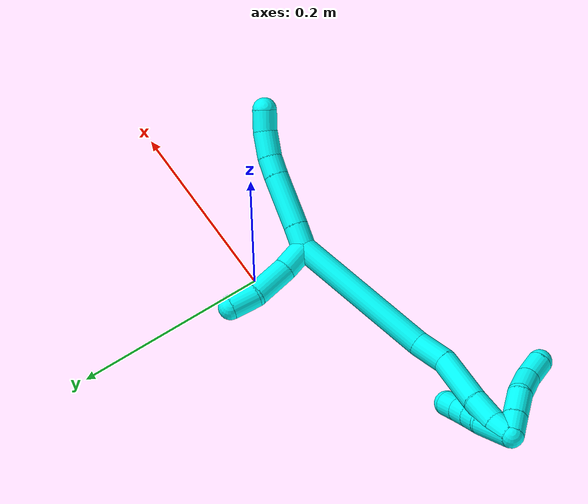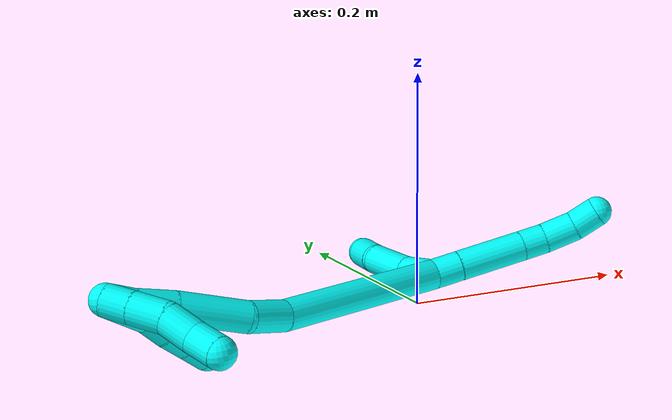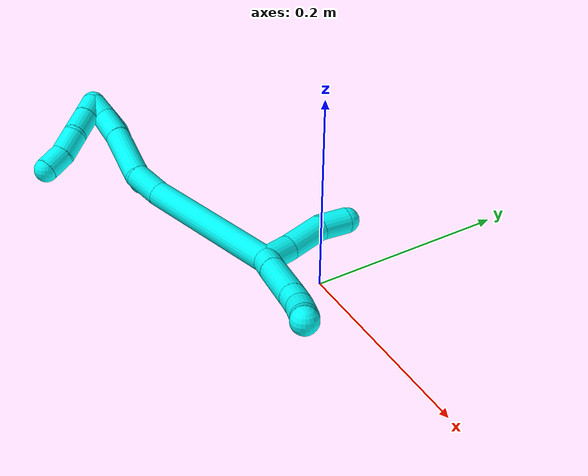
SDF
<sdf version="1.7">
 <world name="default">
  <model name="3">
   <static>0</static>
   <link name="3">
    <collision name="collision-cylinder-e_1_2_8">
     <pose>0.011787 -0.000809 0.001276 0.565229 1.44335 0.500391</pose>
     <geometry><cylinder><radius>0.0125</radius><length>0.023767</length></cylinder></geometry>
     <surface>
      <friction><ode><mu>1.16</mu><mu2>1.16</mu2><slip1>0</slip1><slip2>0</slip2></ode></friction>
      <contact><ode><kp>1e+06</kp><kd>1</kd><max_vel>0</max_vel><min_depth>0.001</min_depth></ode></contact>
     </surface>
    </collision>
    <visual name="visual-cylinder-e_1_2_8">
     <pose>0.011787 -0.000809 0.001276 0.565229 1.44335 0.500391</pose>
     <geometry><cylinder><radius>0.0125</radius><length>0.023767</length></cylinder></geometry>
     <material><ambient>0.003922 1 0.996078 1</ambient></material>
    </visual>
    <collision name="collision-cylinder-e_2_8_9">
     <pose>0.051253 -0.002834 0.005322 0.413616 1.46188 0.371887</pose>
     <geometry><cylinder><radius>0.0125</radius><length>0.055687</length></cylinder></geometry>
     <surface>
      <friction><ode><mu>1.16</mu><mu2>1.16</mu2><slip1>0</slip1><slip2>0</slip2></ode></friction>
      <contact><ode><kp>1e+06</kp><kd>1</kd><max_vel>0</max_vel><min_depth>0.001</min_depth></ode></contact>
     </surface>
    </collision>
    <visual name="visual-cylinder-e_2_8_9">
     <pose>0.051253 -0.002834 0.005322 0.413616 1.46188 0.371887</pose>
     <geometry><cylinder><radius>0.0125</radius><length>0.055687</length></cylinder></geometry>
     <material><ambient>0.003922 1 0.996078 1</ambient></material>
    </visual>
    <collision name="collision-cylinder-e_3_9_10">
     <pose>0.089166 -0.004881 0.009293 0.605473 1.42927 0.529268</pose>
     <geometry><cylinder><radius>0.0125</radius><length>0.020677</length></cylinder></geometry>
     <surface>
      <friction><ode><mu>1.16</mu><mu2>1.16</mu2><slip1>0</slip1><slip2>0</slip2></ode></friction>
      <contact><ode><kp>1e+06</kp><kd>1</kd><max_vel>0</max_vel><min_depth>0.001</min_depth></ode></contact>
     </surface>
    </collision>
    <visual name="visual-cylinder-e_3_9_10">
     <pose>0.089166 -0.004881 0.009293 0.605473 1.42927 0.529268</pose>
     <geometry><cylinder><radius>0.0125</radius><length>0.020677</length></cylinder></geometry>
     <material><ambient>0.003922 1 0.996078 1</ambient></material>
    </visual>
    <collision name="collision-cylinder-e_4_10_11">
     <pose>0.112468 -0.008737 0.01369 0.757798 1.24574 0.557059</pose>
     <geometry><cylinder><radius>0.0125</radius><length>0.027577</length></cylinder></geometry>
     <surface>
      <friction><ode><mu>1.16</mu><mu2>1.16</mu2><slip1>0</slip1><slip2>0</slip2></ode></friction>
      <contact><ode><kp>1e+06</kp><kd>1</kd><max_vel>0</max_vel><min_depth>0.001</min_depth></ode></contact>
     </surface>
    </collision>
    <visual name="visual-cylinder-e_4_10_11">
     <pose>0.112468 -0.008737 0.01369 0.757798 1.24574 0.557059</pose>
     <geometry><cylinder><radius>0.0125</radius><length>0.027577</length></cylinder></geometry>
     <material><ambient>0.003922 1 0.996078 1</ambient></material>
    </visual>
    <collision name="collision-cylinder-e_5_11_6">
     <pose>0.134857 -0.015525 0.021703 0.663201 0.990729 0.36786</pose>
     <geometry><cylinder><radius>0.0125</radius><length>0.022293</length></cylinder></geometry>
     <surface>
      <friction><ode><mu>1.16</mu><mu2>1.16</mu2><slip1>0</slip1><slip2>0</slip2></ode></friction>
      <contact><ode><kp>1e+06</kp><kd>1</kd><max_vel>0</max_vel><min_depth>0.001</min_depth></ode></contact>
     </surface>
    </collision>
    <visual name="visual-cylinder-e_5_11_6">
     <pose>0.134857 -0.015525 0.021703 0.663201 0.990729 0.36786</pose>
     <geometry><cylinder><radius>0.0125</radius><length>0.022293</length></cylinder></geometry>
     <material><ambient>0.003922 1 0.996078 1</ambient></material>
    </visual>
    <collision name="collision-cylinder-e_1_2_12">
     <pose>-0.006761 0.013358 0.000324 -1.54658 -0.468385 0.457568</pose>
     <geometry><cylinder><radius>0.0125</radius><length>0.029951</length></cylinder></geometry>
     <surface>
      <friction><ode><mu>1.16</mu><mu2>1.16</mu2><slip1>0</slip1><slip2>0</slip2></ode></friction>
      <contact><ode><kp>1e+06</kp><kd>1</kd><max_vel>0</max_vel><min_depth>0.001</min_depth></ode></contact>
     </surface>
    </collision>
    <visual name="visual-cylinder-e_1_2_12">
     <pose>-0.006761 0.013358 0.000324 -1.54658 -0.468385 0.457568</pose>
     <geometry><cylinder><radius>0.0125</radius><length>0.029951</length></cylinder></geometry>
     <material><ambient>0.003922 1 0.996078 1</ambient></material>
    </visual>
    <collision name="collision-cylinder-e_2_12_13">
     <pose>-0.021297 0.045549 0.004355 -1.37641 -0.384926 0.3178</pose>
     <geometry><cylinder><radius>0.0125</radius><length>0.041417</length></cylinder></geometry>
     <surface>
      <friction><ode><mu>1.16</mu><mu2>1.16</mu2><slip1>0</slip1><slip2>0</slip2></ode></friction>
      <contact><ode><kp>1e+06</kp><kd>1</kd><max_vel>0</max_vel><min_depth>0.001</min_depth></ode></contact>
     </surface>
    </collision>
    <visual name="visual-cylinder-e_2_12_13">
     <pose>-0.021297 0.045549 0.004355 -1.37641 -0.384926 0.3178</pose>
     <geometry><cylinder><radius>0.0125</radius><length>0.041417</length></cylinder></geometry>
     <material><ambient>0.003922 1 0.996078 1</ambient></material>
    </visual>
    <collision name="collision-cylinder-e_3_13_5">
     <pose>-0.030433 0.078606 0.008925 -1.51023 -0.095179 0.08959</pose>
     <geometry><cylinder><radius>0.0125</radius><length>0.028633</length></cylinder></geometry>
     <surface>
      <friction><ode><mu>1.16</mu><mu2>1.16</mu2><slip1>0</slip1><slip2>0</slip2></ode></friction>
      <contact><ode><kp>1e+06</kp><kd>1</kd><max_vel>0</max_vel><min_depth>0.001</min_depth></ode></contact>
     </surface>
    </collision>
    <visual name="visual-cylinder-e_3_13_5">
     <pose>-0.030433 0.078606 0.008925 -1.51023 -0.095179 0.08959</pose>
     <geometry><cylinder><radius>0.0125</radius><length>0.028633</length></cylinder></geometry>
     <material><ambient>0.003922 1 0.996078 1</ambient></material>
    </visual>
    <collision name="collision-cylinder-e_1_2_14">
     <pose>-0.070289 -0.031164 0.005158 1.40676 -1.14844 -1.00363</pose>
     <geometry><cylinder><radius>0.0125</radius><length>0.154121</length></cylinder></geometry>
     <surface>
      <friction><ode><mu>1.16</mu><mu2>1.16</mu2><slip1>0</slip1><slip2>0</slip2></ode></friction>
      <contact><ode><kp>1e+06</kp><kd>1</kd><max_vel>0</max_vel><min_depth>0.001</min_depth></ode></contact>
     </surface>
    </collision>
    <visual name="visual-cylinder-e_1_2_14">
     <pose>-0.070289 -0.031164 0.005158 1.40676 -1.14844 -1.00363</pose>
     <geometry><cylinder><radius>0.0125</radius><length>0.154121</length></cylinder></geometry>
     <material><ambient>0.003922 1 0.996078 1</ambient></material>
    </visual>
    <collision name="collision-cylinder-e_2_14_15">
     <pose>-0.155297 -0.069646 0.014777 1.02343 -1.04348 -0.624584</pose>
     <geometry><cylinder><radius>0.0125</radius><length>0.034064</length></cylinder></geometry>
     <surface>
      <friction><ode><mu>1.16</mu><mu2>1.16</mu2><slip1>0</slip1><slip2>0</slip2></ode></friction>
      <contact><ode><kp>1e+06</kp><kd>1</kd><max_vel>0</max_vel><min_depth>0.001</min_depth></ode></contact>
     </surface>
    </collision>
    <visual name="visual-cylinder-e_2_14_15">
     <pose>-0.155297 -0.069646 0.014777 1.02343 -1.04348 -0.624584</pose>
     <geometry><cylinder><radius>0.0125</radius><length>0.034064</length></cylinder></geometry>
     <material><ambient>0.003922 1 0.996078 1</ambient></material>
    </visual>
    <collision name="collision-cylinder-e_3_15_16">
     <pose>-0.196471 -0.080073 0.029767 0.287022 -1.17747 -0.192383</pose>
     <geometry><cylinder><radius>0.0125</radius><length>0.057286</length></cylinder></geometry>
     <surface>
      <friction><ode><mu>1.16</mu><mu2>1.16</mu2><slip1>0</slip1><slip2>0</slip2></ode></friction>
      <contact><ode><kp>1e+06</kp><kd>1</kd><max_vel>0</max_vel><min_depth>0.001</min_depth></ode></contact>
     </surface>
    </collision>
    <visual name="visual-cylinder-e_3_15_16">
     <pose>-0.196471 -0.080073 0.029767 0.287022 -1.17747 -0.192383</pose>
     <geometry><cylinder><radius>0.0125</radius><length>0.057286</length></cylinder></geometry>
     <material><ambient>0.003922 1 0.996078 1</ambient></material>
    </visual>
    <collision name="collision-cylinder-e_4_16_17">
     <pose>-0.237655 -0.08629 0.045109 0.573525 -1.19973 -0.398036</pose>
     <geometry><cylinder><radius>0.0125</radius><length>0.031608</length></cylinder></geometry>
     <surface>
      <friction><ode><mu>1.16</mu><mu2>1.16</mu2><slip1>0</slip1><slip2>0</slip2></ode></friction>
      <contact><ode><kp>1e+06</kp><kd>1</kd><max_vel>0</max_vel><min_depth>0.001</min_depth></ode></contact>
     </surface>
    </collision>
    <visual name="visual-cylinder-e_4_16_17">
     <pose>-0.237655 -0.08629 0.045109 0.573525 -1.19973 -0.398036</pose>
     <geometry><cylinder><radius>0.0125</radius><length>0.031608</length></cylinder></geometry>
     <material><ambient>0.003922 1 0.996078 1</ambient></material>
    </visual>
    <collision name="collision-cylinder-e_5_17_1">
     <pose>-0.262028 -0.0932 0.054809 0.66107 -1.00019 -0.370679</pose>
     <geometry><cylinder><radius>0.0125</radius><length>0.022921</length></cylinder></geometry>
     <surface>
      <friction><ode><mu>1.16</mu><mu2>1.16</mu2><slip1>0</slip1><slip2>0</slip2></ode></friction>
      <contact><ode><kp>1e+06</kp><kd>1</kd><max_vel>0</max_vel><min_depth>0.001</min_depth></ode></contact>
     </surface>
    </collision>
    <visual name="visual-cylinder-e_5_17_1">
     <pose>-0.262028 -0.0932 0.054809 0.66107 -1.00019 -0.370679</pose>
     <geometry><cylinder><radius>0.0125</radius><length>0.022921</length></cylinder></geometry>
     <material><ambient>0.003922 1 0.996078 1</ambient></material>
    </visual>
    <collision name="collision-cylinder-e_1_1_18">
     <pose>-0.263417 -0.103137 0.056209 2.08738 0.86348 1.33917</pose>
     <geometry><cylinder><radius>0.0125</radius><length>0.021723</length></cylinder></geometry>
     <surface>
      <friction><ode><mu>1.16</mu><mu2>1.16</mu2><slip1>0</slip1><slip2>0</slip2></ode></friction>
      <contact><ode><kp>1e+06</kp><kd>1</kd><max_vel>0</max_vel><min_depth>0.001</min_depth></ode></contact>
     </surface>
    </collision>
    <visual name="visual-cylinder-e_1_1_18">
     <pose>-0.263417 -0.103137 0.056209 2.08738 0.86348 1.33917</pose>
     <geometry><cylinder><radius>0.0125</radius><length>0.021723</length></cylinder></geometry>
     <material><ambient>0.003922 1 0.996078 1</ambient></material>
    </visual>
    <collision name="collision-cylinder-e_2_18_19">
     <pose>-0.244761 -0.117253 0.048281 2.07875 0.850245 1.31258</pose>
     <geometry><cylinder><radius>0.0125</radius><length>0.027681</length></cylinder></geometry>
     <surface>
      <friction><ode><mu>1.16</mu><mu2>1.16</mu2><slip1>0</slip1><slip2>0</slip2></ode></friction>
      <contact><ode><kp>1e+06</kp><kd>1</kd><max_vel>0</max_vel><min_depth>0.001</min_depth></ode></contact>
     </surface>
    </collision>
    <visual name="visual-cylinder-e_2_18_19">
     <pose>-0.244761 -0.117253 0.048281 2.07875 0.850245 1.31258</pose>
     <geometry><cylinder><radius>0.0125</radius><length>0.027681</length></cylinder></geometry>
     <material><ambient>0.003922 1 0.996078 1</ambient></material>
    </visual>
    <collision name="collision-cylinder-e_3_19_20">
     <pose>-0.227083 -0.13346 0.03681 2.27778 0.591997 1.16899</pose>
     <geometry><cylinder><radius>0.0125</radius><length>0.026083</length></cylinder></geometry>
     <surface>
      <friction><ode><mu>1.16</mu><mu2>1.16</mu2><slip1>0</slip1><slip2>0</slip2></ode></friction>
      <contact><ode><kp>1e+06</kp><kd>1</kd><max_vel>0</max_vel><min_depth>0.001</min_depth></ode></contact>
     </surface>
    </collision>
    <visual name="visual-cylinder-e_3_19_20">
     <pose>-0.227083 -0.13346 0.03681 2.27778 0.591997 1.16899</pose>
     <geometry><cylinder><radius>0.0125</radius><length>0.026083</length></cylinder></geometry>
     <material><ambient>0.003922 1 0.996078 1</ambient></material>
    </visual>
    <collision name="collision-cylinder-e_4_20_4">
     <pose>-0.213814 -0.151379 0.025262 2.0071 0.51077 0.777867</pose>
     <geometry><cylinder><radius>0.0125</radius><length>0.024514</length></cylinder></geometry>
     <surface>
      <friction><ode><mu>1.16</mu><mu2>1.16</mu2><slip1>0</slip1><slip2>0</slip2></ode></friction>
      <contact><ode><kp>1e+06</kp><kd>1</kd><max_vel>0</max_vel><min_depth>0.001</min_depth></ode></contact>
     </surface>
    </collision>
    <visual name="visual-cylinder-e_4_20_4">
     <pose>-0.213814 -0.151379 0.025262 2.0071 0.51077 0.777867</pose>
     <geometry><cylinder><radius>0.0125</radius><length>0.024514</length></cylinder></geometry>
     <material><ambient>0.003922 1 0.996078 1</ambient></material>
    </visual>
    <collision name="collision-cylinder-e_1_1_21">
     <pose>-0.257712 -0.088571 0.048532 -2.4948 0.784429 -1.77965</pose>
     <geometry><cylinder><radius>0.0125</radius><length>0.039525</length></cylinder></geometry>
     <surface>
      <friction><ode><mu>1.16</mu><mu2>1.16</mu2><slip1>0</slip1><slip2>0</slip2></ode></friction>
      <contact><ode><kp>1e+06</kp><kd>1</kd><max_vel>0</max_vel><min_depth>0.001</min_depth></ode></contact>
     </surface>
    </collision>
    <visual name="visual-cylinder-e_1_1_21">
     <pose>-0.257712 -0.088571 0.048532 -2.4948 0.784429 -1.77965</pose>
     <geometry><cylinder><radius>0.0125</radius><length>0.039525</length></cylinder></geometry>
     <material><ambient>0.003922 1 0.996078 1</ambient></material>
    </visual>
    <collision name="collision-cylinder-e_2_21_22">
     <pose>-0.237276 -0.078169 0.029839 -2.88538 0.69388 -2.45711</pose>
     <geometry><cylinder><radius>0.0125</radius><length>0.020253</length></cylinder></geometry>
     <surface>
      <friction><ode><mu>1.16</mu><mu2>1.16</mu2><slip1>0</slip1><slip2>0</slip2></ode></friction>
      <contact><ode><kp>1e+06</kp><kd>1</kd><max_vel>0</max_vel><min_depth>0.001</min_depth></ode></contact>
     </surface>
    </collision>
    <visual name="visual-cylinder-e_2_21_22">
     <pose>-0.237276 -0.078169 0.029839 -2.88538 0.69388 -2.45711</pose>
     <geometry><cylinder><radius>0.0125</radius><length>0.020253</length></cylinder></geometry>
     <material><ambient>0.003922 1 0.996078 1</ambient></material>
    </visual>
    <collision name="collision-cylinder-e_3_22_23">
     <pose>-0.223941 -0.0735 0.015505 -2.76427 0.752998 -2.24179</pose>
     <geometry><cylinder><radius>0.0125</radius><length>0.020059</length></cylinder></geometry>
     <surface>
      <friction><ode><mu>1.16</mu><mu2>1.16</mu2><slip1>0</slip1><slip2>0</slip2></ode></friction>
      <contact><ode><kp>1e+06</kp><kd>1</kd><max_vel>0</max_vel><min_depth>0.001</min_depth></ode></contact>
     </surface>
    </collision>
    <visual name="visual-cylinder-e_3_22_23">
     <pose>-0.223941 -0.0735 0.015505 -2.76427 0.752998 -2.24179</pose>
     <geometry><cylinder><radius>0.0125</radius><length>0.020059</length></cylinder></geometry>
     <material><ambient>0.003922 1 0.996078 1</ambient></material>
    </visual>
    <collision name="collision-cylinder-e_4_23_3">
     <pose>-0.210307 -0.067848 0.001847 -2.7345 0.73703 -2.15985</pose>
     <geometry><cylinder><radius>0.0125</radius><length>0.020164</length></cylinder></geometry>
     <surface>
      <friction><ode><mu>1.16</mu><mu2>1.16</mu2><slip1>0</slip1><slip2>0</slip2></ode></friction>
      <contact><ode><kp>1e+06</kp><kd>1</kd><max_vel>0</max_vel><min_depth>0.001</min_depth></ode></contact>
     </surface>
    </collision>
    <visual name="visual-cylinder-e_4_23_3">
     <pose>-0.210307 -0.067848 0.001847 -2.7345 0.73703 -2.15985</pose>
     <geometry><cylinder><radius>0.0125</radius><length>0.020164</length></cylinder></geometry>
     <material><ambient>0.003922 1 0.996078 1</ambient></material>
    </visual>
    <collision name="collision-sphere-3">
     <pose>-0.203531 -0.064892 -0.005008 0 -0 0</pose>
     <geometry><sphere><radius>0.0125</radius></sphere></geometry>
     <surface>
      <friction><ode><mu>1.16</mu><mu2>1.16</mu2><slip1>0</slip1><slip2>0</slip2></ode></friction>
      <contact><ode><kp>1e+06</kp><kd>1</kd><max_vel>0</max_vel><min_depth>0.001</min_depth></ode></contact>
     </surface>
    </collision>
    <visual name="visual-sphere-3">
     <pose>-0.203531 -0.064892 -0.005008 0 -0 0</pose>
     <geometry><sphere><radius>0.0125</radius></sphere></geometry>
     <material><ambient>0.003922 1 0.996078 1</ambient></material>
    </visual>
    <collision name="collision-sphere-23">
     <pose>-0.217083 -0.070804 0.008702 0 -0 0</pose>
     <geometry><sphere><radius>0.0125</radius></sphere></geometry>
     <surface>
      <friction><ode><mu>1.16</mu><mu2>1.16</mu2><slip1>0</slip1><slip2>0</slip2></ode></friction>
      <contact><ode><kp>1e+06</kp><kd>1</kd><max_vel>0</max_vel><min_depth>0.001</min_depth></ode></contact>
     </surface>
    </collision>
    <visual name="visual-sphere-23">
     <pose>-0.217083 -0.070804 0.008702 0 -0 0</pose>
     <geometry><sphere><radius>0.0125</radius></sphere></geometry>
     <material><ambient>0.003922 1 0.996078 1</ambient></material>
    </visual>
    <collision name="collision-sphere-22">
     <pose>-0.2308 -0.076196 0.022308 0 -0 0</pose>
     <geometry><sphere><radius>0.0125</radius></sphere></geometry>
     <surface>
      <friction><ode><mu>1.16</mu><mu2>1.16</mu2><slip1>0</slip1><slip2>0</slip2></ode></friction>
      <contact><ode><kp>1e+06</kp><kd>1</kd><max_vel>0</max_vel><min_depth>0.001</min_depth></ode></contact>
     </surface>
    </collision>
    <visual name="visual-sphere-22">
     <pose>-0.2308 -0.076196 0.022308 0 -0 0</pose>
     <geometry><sphere><radius>0.0125</radius></sphere></geometry>
     <material><ambient>0.003922 1 0.996078 1</ambient></material>
    </visual>
    <collision name="collision-sphere-21">
     <pose>-0.243752 -0.080142 0.03737 0 -0 0</pose>
     <geometry><sphere><radius>0.0125</radius></sphere></geometry>
     <surface>
      <friction><ode><mu>1.16</mu><mu2>1.16</mu2><slip1>0</slip1><slip2>0</slip2></ode></friction>
      <contact><ode><kp>1e+06</kp><kd>1</kd><max_vel>0</max_vel><min_depth>0.001</min_depth></ode></contact>
     </surface>
    </collision>
    <visual name="visual-sphere-21">
     <pose>-0.243752 -0.080142 0.03737 0 -0 0</pose>
     <geometry><sphere><radius>0.0125</radius></sphere></geometry>
     <material><ambient>0.003922 1 0.996078 1</ambient></material>
    </visual>
    <collision name="collision-sphere-4">
     <pose>-0.207822 -0.16107 0.020744 0 -0 0</pose>
     <geometry><sphere><radius>0.0125</radius></sphere></geometry>
     <surface>
      <friction><ode><mu>1.16</mu><mu2>1.16</mu2><slip1>0</slip1><slip2>0</slip2></ode></friction>
      <contact><ode><kp>1e+06</kp><kd>1</kd><max_vel>0</max_vel><min_depth>0.001</min_depth></ode></contact>
     </surface>
    </collision>
    <visual name="visual-sphere-4">
     <pose>-0.207822 -0.16107 0.020744 0 -0 0</pose>
     <geometry><sphere><radius>0.0125</radius></sphere></geometry>
     <material><ambient>0.003922 1 0.996078 1</ambient></material>
    </visual>
    <collision name="collision-sphere-20">
     <pose>-0.219806 -0.141688 0.029781 0 -0 0</pose>
     <geometry><sphere><radius>0.0125</radius></sphere></geometry>
     <surface>
      <friction><ode><mu>1.16</mu><mu2>1.16</mu2><slip1>0</slip1><slip2>0</slip2></ode></friction>
      <contact><ode><kp>1e+06</kp><kd>1</kd><max_vel>0</max_vel><min_depth>0.001</min_depth></ode></contact>
     </surface>
    </collision>
    <visual name="visual-sphere-20">
     <pose>-0.219806 -0.141688 0.029781 0 -0 0</pose>
     <geometry><sphere><radius>0.0125</radius></sphere></geometry>
     <material><ambient>0.003922 1 0.996078 1</ambient></material>
    </visual>
    <collision name="collision-sphere-6">
     <pose>0.14418 -0.019286 0.026517 0 -0 0</pose>
     <geometry><sphere><radius>0.0125</radius></sphere></geometry>
     <surface>
      <friction><ode><mu>1.16</mu><mu2>1.16</mu2><slip1>0</slip1><slip2>0</slip2></ode></friction>
      <contact><ode><kp>1e+06</kp><kd>1</kd><max_vel>0</max_vel><min_depth>0.001</min_depth></ode></contact>
     </surface>
    </collision>
    <visual name="visual-sphere-6">
     <pose>0.14418 -0.019286 0.026517 0 -0 0</pose>
     <geometry><sphere><radius>0.0125</radius></sphere></geometry>
     <material><ambient>0.003922 1 0.996078 1</ambient></material>
    </visual>
    <collision name="collision-sphere-11">
     <pose>0.125534 -0.011764 0.016889 0 -0 0</pose>
     <geometry><sphere><radius>0.0125</radius></sphere></geometry>
     <surface>
      <friction><ode><mu>1.16</mu><mu2>1.16</mu2><slip1>0</slip1><slip2>0</slip2></ode></friction>
      <contact><ode><kp>1e+06</kp><kd>1</kd><max_vel>0</max_vel><min_depth>0.001</min_depth></ode></contact>
     </surface>
    </collision>
    <visual name="visual-sphere-11">
     <pose>0.125534 -0.011764 0.016889 0 -0 0</pose>
     <geometry><sphere><radius>0.0125</radius></sphere></geometry>
     <material><ambient>0.003922 1 0.996078 1</ambient></material>
    </visual>
    <collision name="collision-sphere-10">
     <pose>0.099401 -0.005711 0.010492 0 -0 0</pose>
     <geometry><sphere><radius>0.0125</radius></sphere></geometry>
     <surface>
      <friction><ode><mu>1.16</mu><mu2>1.16</mu2><slip1>0</slip1><slip2>0</slip2></ode></friction>
      <contact><ode><kp>1e+06</kp><kd>1</kd><max_vel>0</max_vel><min_depth>0.001</min_depth></ode></contact>
     </surface>
    </collision>
    <visual name="visual-sphere-10">
     <pose>0.099401 -0.005711 0.010492 0 -0 0</pose>
     <geometry><sphere><radius>0.0125</radius></sphere></geometry>
     <material><ambient>0.003922 1 0.996078 1</ambient></material>
    </visual>
    <collision name="collision-sphere-9">
     <pose>0.078931 -0.004051 0.008094 0 -0 0</pose>
     <geometry><sphere><radius>0.0125</radius></sphere></geometry>
     <surface>
      <friction><ode><mu>1.16</mu><mu2>1.16</mu2><slip1>0</slip1><slip2>0</slip2></ode></friction>
      <contact><ode><kp>1e+06</kp><kd>1</kd><max_vel>0</max_vel><min_depth>0.001</min_depth></ode></contact>
     </surface>
    </collision>
    <visual name="visual-sphere-9">
     <pose>0.078931 -0.004051 0.008094 0 -0 0</pose>
     <geometry><sphere><radius>0.0125</radius></sphere></geometry>
     <material><ambient>0.003922 1 0.996078 1</ambient></material>
    </visual>
    <collision name="collision-sphere-2">
     <geometry><sphere><radius>0.0125</radius></sphere></geometry>
     <surface>
      <friction><ode><mu>1.16</mu><mu2>1.16</mu2><slip1>0</slip1><slip2>0</slip2></ode></friction>
      <contact><ode><kp>1e+06</kp><kd>1</kd><max_vel>0</max_vel><min_depth>0.001</min_depth></ode></contact>
     </surface>
    </collision>
    <visual name="visual-sphere-2">
     <geometry><sphere><radius>0.0125</radius></sphere></geometry>
     <material><ambient>0.003922 1 0.996078 1</ambient></material>
    </visual>
    <collision name="collision-sphere-19">
     <pose>-0.234361 -0.125232 0.04384 0 -0 0</pose>
     <geometry><sphere><radius>0.0125</radius></sphere></geometry>
     <surface>
      <friction><ode><mu>1.16</mu><mu2>1.16</mu2><slip1>0</slip1><slip2>0</slip2></ode></friction>
      <contact><ode><kp>1e+06</kp><kd>1</kd><max_vel>0</max_vel><min_depth>0.001</min_depth></ode></contact>
     </surface>
    </collision>
    <visual name="visual-sphere-19">
     <pose>-0.234361 -0.125232 0.04384 0 -0 0</pose>
     <geometry><sphere><radius>0.0125</radius></sphere></geometry>
     <material><ambient>0.003922 1 0.996078 1</ambient></material>
    </visual>
    <collision name="collision-sphere-8">
     <pose>0.023574 -0.001618 0.002551 0 -0 0</pose>
     <geometry><sphere><radius>0.0125</radius></sphere></geometry>
     <surface>
      <friction><ode><mu>1.16</mu><mu2>1.16</mu2><slip1>0</slip1><slip2>0</slip2></ode></friction>
      <contact><ode><kp>1e+06</kp><kd>1</kd><max_vel>0</max_vel><min_depth>0.001</min_depth></ode></contact>
     </surface>
    </collision>
    <visual name="visual-sphere-8">
     <pose>0.023574 -0.001618 0.002551 0 -0 0</pose>
     <geometry><sphere><radius>0.0125</radius></sphere></geometry>
     <material><ambient>0.003922 1 0.996078 1</ambient></material>
    </visual>
    <collision name="collision-sphere-12">
     <pose>-0.013521 0.026717 0.000647 0 -0 0</pose>
     <geometry><sphere><radius>0.0125</radius></sphere></geometry>
     <surface>
      <friction><ode><mu>1.16</mu><mu2>1.16</mu2><slip1>0</slip1><slip2>0</slip2></ode></friction>
      <contact><ode><kp>1e+06</kp><kd>1</kd><max_vel>0</max_vel><min_depth>0.001</min_depth></ode></contact>
     </surface>
    </collision>
    <visual name="visual-sphere-12">
     <pose>-0.013521 0.026717 0.000647 0 -0 0</pose>
     <geometry><sphere><radius>0.0125</radius></sphere></geometry>
     <material><ambient>0.003922 1 0.996078 1</ambient></material>
    </visual>
    <collision name="collision-sphere-13">
     <pose>-0.029073 0.06438 0.008062 0 -0 0</pose>
     <geometry><sphere><radius>0.0125</radius></sphere></geometry>
     <surface>
      <friction><ode><mu>1.16</mu><mu2>1.16</mu2><slip1>0</slip1><slip2>0</slip2></ode></friction>
      <contact><ode><kp>1e+06</kp><kd>1</kd><max_vel>0</max_vel><min_depth>0.001</min_depth></ode></contact>
     </surface>
    </collision>
    <visual name="visual-sphere-13">
     <pose>-0.029073 0.06438 0.008062 0 -0 0</pose>
     <geometry><sphere><radius>0.0125</radius></sphere></geometry>
     <material><ambient>0.003922 1 0.996078 1</ambient></material>
    </visual>
    <collision name="collision-sphere-5">
     <pose>-0.031794 0.092831 0.009787 0 -0 0</pose>
     <geometry><sphere><radius>0.0125</radius></sphere></geometry>
     <surface>
      <friction><ode><mu>1.16</mu><mu2>1.16</mu2><slip1>0</slip1><slip2>0</slip2></ode></friction>
      <contact><ode><kp>1e+06</kp><kd>1</kd><max_vel>0</max_vel><min_depth>0.001</min_depth></ode></contact>
     </surface>
    </collision>
    <visual name="visual-sphere-5">
     <pose>-0.031794 0.092831 0.009787 0 -0 0</pose>
     <geometry><sphere><radius>0.0125</radius></sphere></geometry>
     <material><ambient>0.003922 1 0.996078 1</ambient></material>
    </visual>
    <collision name="collision-sphere-14">
     <pose>-0.140578 -0.062328 0.010317 0 -0 0</pose>
     <geometry><sphere><radius>0.0125</radius></sphere></geometry>
     <surface>
      <friction><ode><mu>1.16</mu><mu2>1.16</mu2><slip1>0</slip1><slip2>0</slip2></ode></friction>
      <contact><ode><kp>1e+06</kp><kd>1</kd><max_vel>0</max_vel><min_depth>0.001</min_depth></ode></contact>
     </surface>
    </collision>
    <visual name="visual-sphere-14">
     <pose>-0.140578 -0.062328 0.010317 0 -0 0</pose>
     <geometry><sphere><radius>0.0125</radius></sphere></geometry>
     <material><ambient>0.003922 1 0.996078 1</ambient></material>
    </visual>
    <collision name="collision-sphere-15">
     <pose>-0.170015 -0.076965 0.019238 0 -0 0</pose>
     <geometry><sphere><radius>0.0125</radius></sphere></geometry>
     <surface>
      <friction><ode><mu>1.16</mu><mu2>1.16</mu2><slip1>0</slip1><slip2>0</slip2></ode></friction>
      <contact><ode><kp>1e+06</kp><kd>1</kd><max_vel>0</max_vel><min_depth>0.001</min_depth></ode></contact>
     </surface>
    </collision>
    <visual name="visual-sphere-15">
     <pose>-0.170015 -0.076965 0.019238 0 -0 0</pose>
     <geometry><sphere><radius>0.0125</radius></sphere></geometry>
     <material><ambient>0.003922 1 0.996078 1</ambient></material>
    </visual>
    <collision name="collision-sphere-16">
     <pose>-0.222927 -0.08318 0.040295 0 -0 0</pose>
     <geometry><sphere><radius>0.0125</radius></sphere></geometry>
     <surface>
      <friction><ode><mu>1.16</mu><mu2>1.16</mu2><slip1>0</slip1><slip2>0</slip2></ode></friction>
      <contact><ode><kp>1e+06</kp><kd>1</kd><max_vel>0</max_vel><min_depth>0.001</min_depth></ode></contact>
     </surface>
    </collision>
    <visual name="visual-sphere-16">
     <pose>-0.222927 -0.08318 0.040295 0 -0 0</pose>
     <geometry><sphere><radius>0.0125</radius></sphere></geometry>
     <material><ambient>0.003922 1 0.996078 1</ambient></material>
    </visual>
    <collision name="collision-sphere-17">
     <pose>-0.252383 -0.089399 0.049922 0 -0 0</pose>
     <geometry><sphere><radius>0.0125</radius></sphere></geometry>
     <surface>
      <friction><ode><mu>1.16</mu><mu2>1.16</mu2><slip1>0</slip1><slip2>0</slip2></ode></friction>
      <contact><ode><kp>1e+06</kp><kd>1</kd><max_vel>0</max_vel><min_depth>0.001</min_depth></ode></contact>
     </surface>
    </collision>
    <visual name="visual-sphere-17">
     <pose>-0.252383 -0.089399 0.049922 0 -0 0</pose>
     <geometry><sphere><radius>0.0125</radius></sphere></geometry>
     <material><ambient>0.003922 1 0.996078 1</ambient></material>
    </visual>
    <collision name="collision-sphere-1">
     <pose>-0.271673 -0.097 0.059695 0 -0 0</pose>
     <geometry><sphere><radius>0.0125</radius></sphere></geometry>
     <surface>
      <friction><ode><mu>1.16</mu><mu2>1.16</mu2><slip1>0</slip1><slip2>0</slip2></ode></friction>
      <contact><ode><kp>1e+06</kp><kd>1</kd><max_vel>0</max_vel><min_depth>0.001</min_depth></ode></contact>
     </surface>
    </collision>
    <visual name="visual-sphere-1">
     <pose>-0.271673 -0.097 0.059695 0 -0 0</pose>
     <geometry><sphere><radius>0.0125</radius></sphere></geometry>
     <material><ambient>0.003922 1 0.996078 1</ambient></material>
    </visual>
    <collision name="collision-sphere-18">
     <pose>-0.255161 -0.109274 0.052723 0 -0 0</pose>
     <geometry><sphere><radius>0.0125</radius></sphere></geometry>
     <surface>
      <friction><ode><mu>1.16</mu><mu2>1.16</mu2><slip1>0</slip1><slip2>0</slip2></ode></friction>
      <contact><ode><kp>1e+06</kp><kd>1</kd><max_vel>0</max_vel><min_depth>0.001</min_depth></ode></contact>
     </surface>
    </collision>
    <visual name="visual-sphere-18">
     <pose>-0.255161 -0.109274 0.052723 0 -0 0</pose>
     <geometry><sphere><radius>0.0125</radius></sphere></geometry>
     <material><ambient>0.003922 1 0.996078 1</ambient></material>
    </visual>
    <inertial>
     <pose>-0.105536 -0.044744 0.019359 0 -0 0</pose>
     <mass>0.75</mass>
     <inertia>
      <ixx>-1.3e-05</ixx>
      <ixy>0</ixy>
      <ixz>0</ixz>
      <iyy>0.000217</iyy>
      <iyz>0</iyz>
      <izz>0.000398</izz>
     </inertia>
    </inertial>
   </link>
   <pose>-0.013441 -0.050894 0.039948 -0.070045 -0.138022 -0.173986</pose>
  </model>
 </world>
</sdf>
